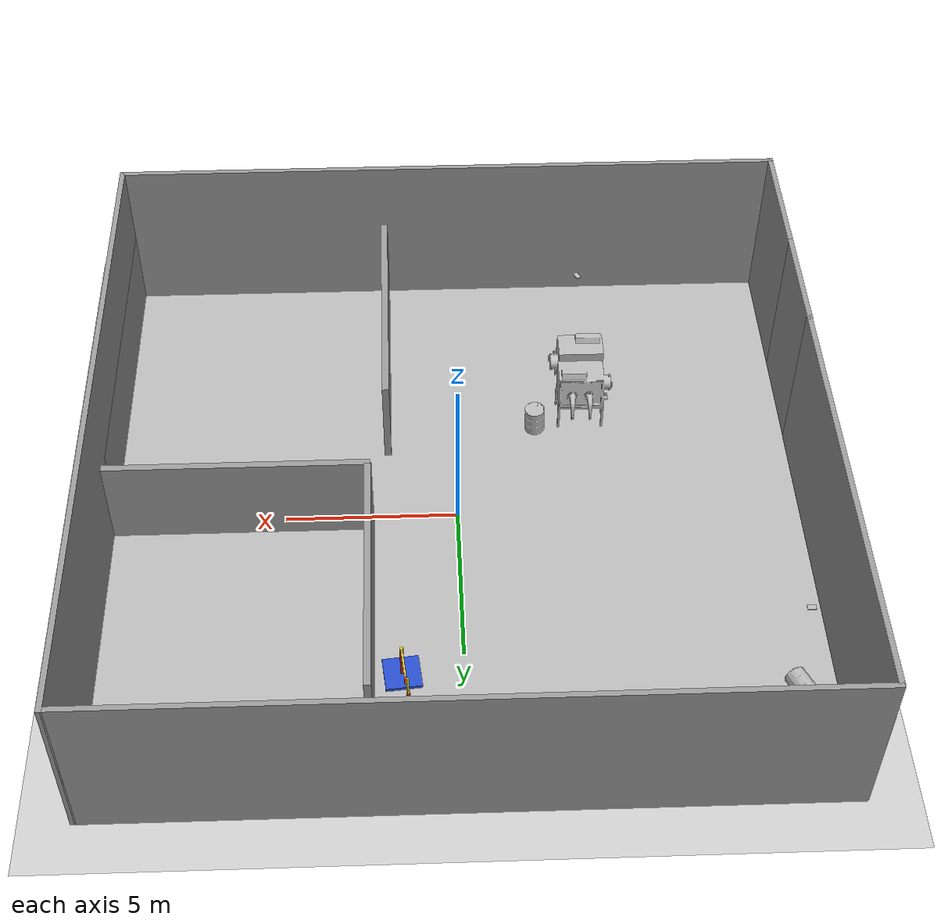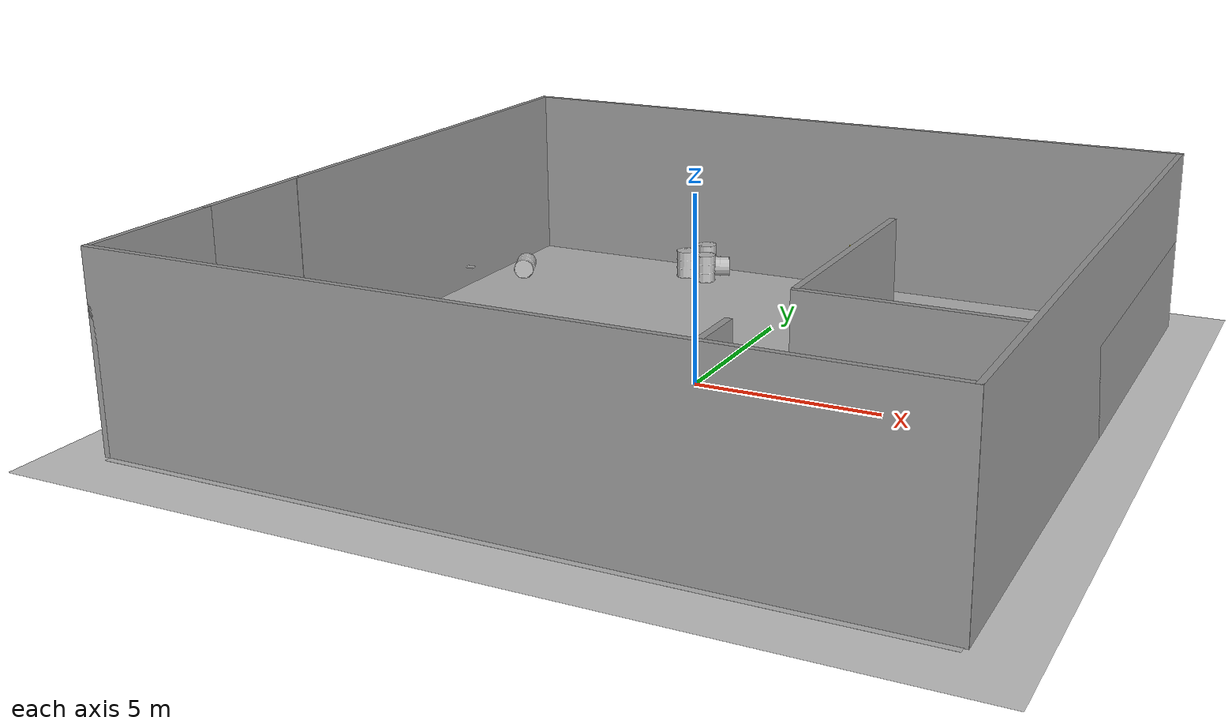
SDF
<sdf version="1.7">
 <world name="default">
  <scene><shadows>0</shadows><ambient>0.4 0.4 0.4 1</ambient><background>0.7 0.7 0.7 1</background></scene>
  <light name="sun" type="directional">
   <cast_shadows>0</cast_shadows>
   <pose>0 0 5 0 -0 0</pose>
   <diffuse>0.8 0.8 0.8 1</diffuse>
   <specular>0.1 0.1 0.1 1</specular>
   <attenuation>
    <range>1000</range>
    <constant>0.9</constant>
    <linear>0.01</linear>
    <quadratic>0.001</quadratic>
   </attenuation>
   <direction>-0.5 0.5 -1</direction>
   <spot><inner_angle>0</inner_angle><outer_angle>0</outer_angle><falloff>0</falloff></spot>
  </light>
  <physics name="default_physics" default="0" type="ode">
   <max_step_size>0.001</max_step_size>
   <real_time_factor>1</real_time_factor>
   <real_time_update_rate>1000</real_time_update_rate>
  </physics>
  <scene><ambient>0.4 0.4 0.4 1</ambient><background>0.7 0.7 0.7 1</background><shadows>1</shadows></scene>
  <spherical_coordinates>
   <surface_model>EARTH_WGS84</surface_model>
   <latitude_deg>0</latitude_deg>
   <longitude_deg>0</longitude_deg>
   <elevation>0</elevation>
   <heading_deg>0</heading_deg>
  </spherical_coordinates>
  <model name="ground_plane">
   <static>1</static>
   <link name="link">
    <collision name="collision">
     <geometry><plane><normal>0 0 1</normal><size>100 100</size></plane></geometry>
     <surface><friction><ode><mu>1</mu><mu2>1</mu2></ode></friction></surface>
    </collision>
    <visual name="visual">
     <cast_shadows>0</cast_shadows>
     <geometry><plane><normal>0 0 1</normal><size>100 100</size></plane></geometry>
     <material>
      <script><uri>file://media/materials/scripts/gazebo.material</uri><name>Gazebo/Grey</name></script>
     </material>
    </visual>
    <velocity_decay><linear>0</linear><angular>0</angular></velocity_decay>
   </link>
  </model>
  <gravity>0 0 -9.8</gravity>
  <magnetic_field>6e-06 2.3e-05 -4.2e-05</magnetic_field>
  <atmosphere type="adiabatic"/>
  <model name="newspaper_2">
   <link name="link_0">
    <visual name="visual">
     <geometry><box><size>0.35 0.25 0.02</size></box></geometry>
     <material>
      <script>
       <uri>model://newspaper_2/materials/scripts</uri>
       <uri>model://newspaper_2/materials/textures</uri>
       <name>newspaper_2</name>
      </script>
     </material>
    </visual>
    <collision name="collision"><geometry><box><size>0.35 0.25 0.02</size></box></geometry></collision>
   </link>
   <static>1</static>
   <pose>4.14262 -0.090324 0.77593 0 0 -0.934541</pose>
  </model>
  <model name="book_18_0">
   <link name="cover">
    <pose>0 -0.000108 0.015405 0 -0 0</pose>
    <visual name="visual">
     <geometry><box><size>0.245 0.16 0.03</size></box></geometry>
     <material>
      <script>
       <uri>model://book_18/materials/scripts</uri>
       <uri>model://book_18/materials/textures</uri>
       <name>book_18</name>
      </script>
     </material>
    </visual>
    <collision name="collision"><geometry><box><size>0.245 0.16 0.03</size></box></geometry></collision>
   </link>
   <link name="page">
    <pose>0 0.000608 0.015405 0 -0 0</pose>
    <visual name="visual">
     <geometry><box><size>0.24502 0.15862 0.028</size></box></geometry>
     <material>
      <lighting>1</lighting>
      <ambient>1 1 1 1</ambient>
      <diffuse>1 1 1 1</diffuse>
      <specular>0.01 0.01 0.01 1</specular>
      <emissive>0 0 0 1</emissive>
      <shader type="vertex"><normal_map>__default__</normal_map></shader>
     </material>
    </visual>
    <collision name="collision"><geometry><box><size>0.245 0.16 0.03</size></box></geometry></collision>
   </link>
   <static>1</static>
   <pose>-4.22936 -9.50954 0.764084 0 0 -1.01851</pose>
  </model>
  <model name="book_14_1">
   <link name="cover">
    <pose>0 -0.000108 0.015405 0 -0 0</pose>
    <visual name="visual">
     <geometry><box><size>0.245 0.16 0.03</size></box></geometry>
     <material>
      <script>
       <uri>model://book_14/materials/scripts</uri>
       <uri>model://book_14/materials/textures</uri>
       <name>book_14</name>
      </script>
     </material>
    </visual>
    <collision name="collision"><geometry><box><size>0.245 0.16 0.03</size></box></geometry></collision>
   </link>
   <link name="page">
    <pose>0 0.000608 0.015405 0 -0 0</pose>
    <visual name="visual">
     <geometry><box><size>0.24502 0.15862 0.028</size></box></geometry>
     <material>
      <lighting>1</lighting>
      <ambient>1 1 1 1</ambient>
      <diffuse>1 1 1 1</diffuse>
      <specular>0.01 0.01 0.01 1</specular>
      <emissive>0 0 0 1</emissive>
      <shader type="vertex"><normal_map>__default__</normal_map></shader>
     </material>
    </visual>
    <collision name="collision"><geometry><box><size>0.245 0.16 0.03</size></box></geometry></collision>
   </link>
   <static>1</static>
   <pose>6.75904 -0.177472 0.763218 0 -0 0</pose>
  </model>
  <model name="book_10_0">
   <link name="cover">
    <pose>0 -0.000108 0.015405 0 -0 0</pose>
    <visual name="visual">
     <geometry><box><size>0.245 0.16 0.03</size></box></geometry>
     <material>
      <script>
       <uri>model://book_10/materials/scripts</uri>
       <uri>model://book_10/materials/textures</uri>
       <name>book_10</name>
      </script>
     </material>
    </visual>
    <collision name="collision"><geometry><box><size>0.245 0.16 0.03</size></box></geometry></collision>
   </link>
   <link name="page">
    <pose>0 0.000608 0.015405 0 -0 0</pose>
    <visual name="visual">
     <geometry><box><size>0.24502 0.15862 0.028</size></box></geometry>
     <material>
      <lighting>1</lighting>
      <ambient>1 1 1 1</ambient>
      <diffuse>1 1 1 1</diffuse>
      <specular>0.01 0.01 0.01 1</specular>
      <emissive>0 0 0 1</emissive>
      <shader type="vertex"><normal_map>__default__</normal_map></shader>
     </material>
    </visual>
    <collision name="collision"><geometry><box><size>0.245 0.16 0.03</size></box></geometry></collision>
   </link>
   <static>1</static>
   <pose>-9.53772 4.32526 0.774201 0 -0 3.12799</pose>
  </model>
  <audio><device>default</device></audio>
  <model name="tall_wall_basic">
   <pose>-0.0251 -0.03688 0 0 -0 0</pose>
   <link name="Wall_10">
    <collision name="Wall_10_Collision">
     <geometry><box><size>4 0.15 5</size></box></geometry>
     <pose>0 0 2.5 0 -0 0</pose>
    </collision>
    <visual name="Wall_10_Visual">
     <pose>0 0 2.5 0 -0 0</pose>
     <geometry><box><size>4 0.15 5</size></box></geometry>
     <material>
      <script><uri>file://media/materials/scripts/gazebo.material</uri><name>Gazebo/Grey</name></script>
      <ambient>1 1 1 1</ambient>
     </material>
     <meta><layer>0</layer></meta>
    </visual>
    <pose>-10.0575 -7.985 0 0 -0 -1.5708</pose>
   </link>
   <link name="Wall_11">
    <collision name="Wall_11_Collision">
     <geometry><box><size>20.25 0.15 5</size></box></geometry>
     <pose>0 0 2.5 0 -0 0</pose>
    </collision>
    <visual name="Wall_11_Visual">
     <pose>0 0 2.5 0 -0 0</pose>
     <geometry><box><size>20.25 0.15 5</size></box></geometry>
     <material>
      <script><uri>file://media/materials/scripts/gazebo.material</uri><name>Gazebo/Grey</name></script>
      <ambient>1 1 1 1</ambient>
     </material>
     <meta><layer>0</layer></meta>
    </visual>
    <pose>-0.007528 -9.91 0 0 -0 0</pose>
   </link>
   <link name="Wall_13">
    <collision name="Wall_13_Collision">
     <geometry><box><size>19.9699 0.15 2.5</size></box></geometry>
     <pose>0 0 1.25 0 -0 0</pose>
    </collision>
    <visual name="Wall_13_Visual">
     <pose>0 0 1.25 0 -0 0</pose>
     <geometry><box><size>19.9699 0.15 2.5</size></box></geometry>
     <material>
      <script><uri>file://media/materials/scripts/gazebo.material</uri><name>Gazebo/Grey</name></script>
      <ambient>1 1 1 1</ambient>
     </material>
     <meta><layer>0</layer></meta>
    </visual>
    <pose>10.05 -0 0 0 -0 1.57004</pose>
   </link>
   <link name="Wall_14">
    <collision name="Wall_14_Collision">
     <geometry><box><size>19.9699 0.15 5</size></box></geometry>
     <pose>0 0 2.5 0 -0 0</pose>
    </collision>
    <visual name="Wall_14_Visual">
     <pose>0 0 2.5 0 -0 0</pose>
     <geometry><box><size>19.9699 0.15 5</size></box></geometry>
     <material>
      <script><uri>file://media/materials/scripts/gazebo.material</uri><name>Gazebo/Grey</name></script>
      <ambient>1 1 1 1</ambient>
     </material>
     <meta><layer>0</layer></meta>
    </visual>
    <pose>10.05 -0 0 0 -0 -1.57155</pose>
   </link>
   <link name="Wall_17">
    <collision name="Wall_17_Collision">
     <geometry><box><size>20.2348 0.15 5</size></box></geometry>
     <pose>0 0 2.5 0 -0 0</pose>
    </collision>
    <visual name="Wall_17_Visual">
     <pose>0 0 2.5 0 -0 0</pose>
     <geometry><box><size>20.2348 0.15 5</size></box></geometry>
     <material>
      <script><uri>file://media/materials/scripts/gazebo.material</uri><name>Gazebo/Grey</name></script>
      <ambient>1 1 1 1</ambient>
     </material>
     <meta><layer>0</layer></meta>
    </visual>
    <pose>0.014972 9.91 0 0 -0 3.14159</pose>
   </link>
   <link name="Wall_19">
    <collision name="Wall_19_Collision">
     <geometry><box><size>12.75 0.15 5</size></box></geometry>
     <pose>0 0 2.5 0 -0 0</pose>
    </collision>
    <visual name="Wall_19_Visual">
     <pose>0 0 2.5 0 -0 0</pose>
     <geometry><box><size>12.75 0.15 5</size></box></geometry>
     <material>
      <script><uri>file://media/materials/scripts/gazebo.material</uri><name>Gazebo/Grey</name></script>
      <ambient>1 1 1 1</ambient>
     </material>
     <meta><layer>0</layer></meta>
    </visual>
    <pose>-10.0475 3.587 0 0 -0 1.5708</pose>
   </link>
   <link name="Wall_6">
    <collision name="Wall_6_Collision">
     <geometry><box><size>3.5 0.15 5</size></box></geometry>
     <pose>0 0 2.5 0 -0 0</pose>
    </collision>
    <visual name="Wall_6_Visual">
     <pose>0 0 2.5 0 -0 0</pose>
     <geometry><box><size>3.5 0.15 5</size></box></geometry>
     <material>
      <script><uri>file://media/materials/scripts/gazebo.material</uri><name>Gazebo/Grey</name></script>
      <ambient>1 1 1 1</ambient>
     </material>
     <meta><layer>0</layer></meta>
    </visual>
    <pose>-10.0575 -4.385 0 0 -0 -1.5708</pose>
   </link>
   <static>1</static>
  </model>
  <model name="glovebox_clone_clone">
   <static>0</static>
   <link name="link">
    <visual name="visual">
     <geometry><mesh><uri>model://glovebox/meshes/glovebox.obj</uri></mesh></geometry>
    </visual>
    <collision name="collision">
     <geometry><mesh><uri>model://glovebox/meshes/glovebox.obj</uri></mesh></geometry>
    </collision>
    <inertial>
     <inertia><ixx>1</ixx><ixy>0</ixy><ixz>0</ixz><iyy>1</iyy><iyz>0</iyz><izz>1</izz></inertia>
     <mass>1</mass>
    </inertial>
   </link>
   <pose>-3.92659 -5.23927 0.000283 1.57189 -3.8e-05 -5.7e-05</pose>
  </model>
  <model name="glovebox_clone_0">
   <static>0</static>
   <link name="link">
    <visual name="visual">
     <geometry><mesh><uri>model://glovebox/meshes/glovebox.obj</uri></mesh></geometry>
    </visual>
    <collision name="collision">
     <geometry><mesh><uri>model://glovebox/meshes/glovebox.obj</uri></mesh></geometry>
    </collision>
    <inertial>
     <inertia><ixx>1</ixx><ixy>0</ixy><ixz>0</ixz><iyy>1</iyy><iyz>0</iyz><izz>1</izz></inertia>
     <mass>1</mass>
    </inertial>
   </link>
   <pose>-3.85422 -3.96262 0.000283 1.57189 -3.8e-05 3.13358</pose>
  </model>
  <model name="toxic_barrel">
   <static>0</static>
   <link name="link">
    <visual name="visual">
     <geometry><mesh><uri>model://toxic_barrel/meshes/barrel_red.obj</uri></mesh></geometry>
    </visual>
    <collision name="collision">
     <geometry><mesh><uri>model://toxic_barrel/meshes/barrel_red.obj</uri></mesh></geometry>
    </collision>
    <inertial>
     <inertia><ixx>1</ixx><ixy>0</ixy><ixz>0</ixz><iyy>1</iyy><iyz>0</iyz><izz>1</izz></inertia>
     <mass>1</mass>
    </inertial>
   </link>
   <pose>-3.6255 8.40382 0.43086 1.58304 0.005373 0.6035</pose>
  </model>
  <model name="toxic_barrel_clone">
   <static>0</static>
   <link name="link">
    <visual name="visual">
     <geometry><mesh><uri>model://toxic_barrel/meshes/barrel_red.obj</uri></mesh></geometry>
    </visual>
    <collision name="collision">
     <geometry><mesh><uri>model://toxic_barrel/meshes/barrel_red.obj</uri></mesh></geometry>
    </collision>
    <inertial>
     <inertia><ixx>1</ixx><ixy>0</ixy><ixz>0</ixz><iyy>1</iyy><iyz>0</iyz><izz>1</izz></inertia>
     <mass>1</mass>
    </inertial>
   </link>
   <pose>-4.09113 9.4926 0.428476 1.57435 0.003646 0.9305</pose>
  </model>
  <model name="toxic_barrel_clone_clone">
   <static>0</static>
   <link name="link">
    <visual name="visual">
     <geometry><mesh><uri>model://toxic_barrel/meshes/barrel_red.obj</uri></mesh></geometry>
    </visual>
    <collision name="collision">
     <geometry><mesh><uri>model://toxic_barrel/meshes/barrel_red.obj</uri></mesh></geometry>
    </collision>
    <inertial>
     <inertia><ixx>1</ixx><ixy>0</ixy><ixz>0</ixz><iyy>1</iyy><iyz>0</iyz><izz>1</izz></inertia>
     <mass>1</mass>
    </inertial>
   </link>
   <pose>-4.63916 9.26515 0.306207 -1e-06 0.196197 0.457584</pose>
  </model>
  <model name="toxic_barrel_clone_clone_0">
   <static>0</static>
   <link name="link">
    <visual name="visual">
     <geometry><mesh><uri>model://toxic_barrel/meshes/barrel_red.obj</uri></mesh></geometry>
    </visual>
    <collision name="collision">
     <geometry><mesh><uri>model://toxic_barrel/meshes/barrel_red.obj</uri></mesh></geometry>
    </collision>
    <inertial>
     <inertia><ixx>1</ixx><ixy>0</ixy><ixz>0</ixz><iyy>1</iyy><iyz>0</iyz><izz>1</izz></inertia>
     <mass>1</mass>
    </inertial>
   </link>
   <pose>-4.37079 8.59494 0.429555 1.5638 0.005478 -0.976021</pose>
  </model>
  <model name="toxic_barrel_clone_clone_0_clone">
   <static>0</static>
   <link name="link">
    <visual name="visual">
     <geometry><mesh><uri>model://toxic_barrel/meshes/barrel_red.obj</uri></mesh></geometry>
    </visual>
    <collision name="collision">
     <geometry><mesh><uri>model://toxic_barrel/meshes/barrel_red.obj</uri></mesh></geometry>
    </collision>
    <inertial>
     <inertia><ixx>1</ixx><ixy>0</ixy><ixz>0</ixz><iyy>1</iyy><iyz>0</iyz><izz>1</izz></inertia>
     <mass>1</mass>
    </inertial>
   </link>
   <pose>-3.56759 9.07979 0.306232 3.14159 -0.588573 1.97766</pose>
  </model>
  <model name="toxic_barrel_clone_clone_0_clone_0">
   <static>0</static>
   <link name="link">
    <visual name="visual">
     <geometry><mesh><uri>model://toxic_barrel/meshes/barrel_red.obj</uri></mesh></geometry>
    </visual>
    <collision name="collision">
     <geometry><mesh><uri>model://toxic_barrel/meshes/barrel_red.obj</uri></mesh></geometry>
    </collision>
    <inertial>
     <inertia><ixx>1</ixx><ixy>0</ixy><ixz>0</ixz><iyy>1</iyy><iyz>0</iyz><izz>1</izz></inertia>
     <mass>1</mass>
    </inertial>
   </link>
   <pose>-2.45725 -3.42441 0.434224 1.58327 0.022163 0.904366</pose>
  </model>
  <model name="toxic_barrel_clone_clone_clone">
   <static>0</static>
   <link name="link">
    <visual name="visual">
     <geometry><mesh><uri>model://toxic_barrel/meshes/barrel_red.obj</uri></mesh></geometry>
    </visual>
    <collision name="collision">
     <geometry><mesh><uri>model://toxic_barrel/meshes/barrel_red.obj</uri></mesh></geometry>
    </collision>
    <inertial>
     <inertia><ixx>1</ixx><ixy>0</ixy><ixz>0</ixz><iyy>1</iyy><iyz>0</iyz><izz>1</izz></inertia>
     <mass>1</mass>
    </inertial>
   </link>
   <pose>-8.98005 6.56129 0.306213 3.14157 -0.589073 -2.71388</pose>
  </model>
  <model name="grey_wall">
   <static>1</static>
   <link name="link">
    <pose>0 0 1.4 0 -0 0</pose>
    <collision name="collision"><geometry><box><size>7.5 0.2 2.8</size></box></geometry></collision>
    <visual name="visual">
     <cast_shadows>0</cast_shadows>
     <geometry><box><size>7.5 0.2 2.8</size></box></geometry>
     <material>
      <script>
       <uri>model://grey_wall/materials/scripts</uri>
       <uri>model://grey_wall/materials/textures</uri>
       <name>vrc/grey_wall</name>
      </script>
     </material>
    </visual>
   </link>
   <pose>6.20319 0.349624 0 0 -0 0</pose>
  </model>
  <model name="grey_wall_clone">
   <static>1</static>
   <link name="link">
    <pose>0 0 1.4 0 -0 0</pose>
    <collision name="collision"><geometry><box><size>7.5 0.2 2.8</size></box></geometry></collision>
    <visual name="visual">
     <cast_shadows>0</cast_shadows>
     <geometry><box><size>7.5 0.2 2.8</size></box></geometry>
     <material>
      <script>
       <uri>model://grey_wall/materials/scripts</uri>
       <uri>model://grey_wall/materials/textures</uri>
       <name>vrc/grey_wall</name>
      </script>
     </material>
    </visual>
   </link>
   <pose>2.52817 4.14283 0 0 -0 1.57058</pose>
  </model>
  <model name="simple_arm">
   <link name="arm_base">
    <inertial>
     <pose>0 0 0.00099 0 -0 0</pose>
     <inertia><ixx>1.11</ixx><ixy>0</ixy><ixz>0</ixz><iyy>100.11</iyy><iyz>0</iyz><izz>1.01</izz></inertia>
     <mass>101</mass>
    </inertial>
    <collision name="arm_base_geom">
     <pose>0 0 0.05 0 -0 0</pose>
     <geometry><box><size>1 1 0.1</size></box></geometry>
    </collision>
    <visual name="arm_base_geom_visual">
     <pose>0 0 0.05 0 -0 0</pose>
     <geometry><box><size>1 1 0.1</size></box></geometry>
     <material>
      <script><uri>file://media/materials/scripts/gazebo.material</uri><name>Gazebo/Blue</name></script>
     </material>
    </visual>
    <collision name="arm_base_geom_arm_trunk">
     <pose>0 0 0.6 0 -0 0</pose>
     <geometry><cylinder><radius>0.05</radius><length>1</length></cylinder></geometry>
    </collision>
    <visual name="arm_base_geom_arm_trunk_visual">
     <pose>0 0 0.6 0 -0 0</pose>
     <geometry><cylinder><radius>0.05</radius><length>1</length></cylinder></geometry>
     <material>
      <script><uri>file://media/materials/scripts/gazebo.material</uri><name>Gazebo/Red</name></script>
     </material>
    </visual>
   </link>
   <link name="arm_shoulder_pan">
    <pose>0 0 1.1 0 -0 0</pose>
    <inertial>
     <pose>0.045455 0 0 0 -0 0</pose>
     <inertia><ixx>0.011</ixx><ixy>0</ixy><ixz>0</ixz><iyy>0.0225</iyy><iyz>0</iyz><izz>0.0135</izz></inertia>
     <mass>1.1</mass>
    </inertial>
    <collision name="arm_shoulder_pan_geom">
     <pose>0 0 0.05 0 -0 0</pose>
     <geometry><cylinder><radius>0.05</radius><length>0.1</length></cylinder></geometry>
    </collision>
    <visual name="arm_shoulder_pan_geom_visual">
     <pose>0 0 0.05 0 -0 0</pose>
     <geometry><cylinder><radius>0.05</radius><length>0.1</length></cylinder></geometry>
     <material>
      <script><uri>file://media/materials/scripts/gazebo.material</uri><name>Gazebo/Yellow</name></script>
     </material>
    </visual>
    <collision name="arm_shoulder_pan_geom_arm_shoulder">
     <pose>0.55 0 0.05 0 -0 0</pose>
     <geometry><box><size>1 0.05 0.1</size></box></geometry>
    </collision>
    <visual name="arm_shoulder_pan_geom_arm_shoulder_visual">
     <pose>0.55 0 0.05 0 -0 0</pose>
     <geometry><box><size>1 0.05 0.1</size></box></geometry>
     <material>
      <script><uri>file://media/materials/scripts/gazebo.material</uri><name>Gazebo/Yellow</name></script>
     </material>
    </visual>
   </link>
   <link name="arm_elbow_pan">
    <pose>1.05 0 1.1 0 -0 0</pose>
    <inertial>
     <pose>0.0875 0 0.083333 0 -0 0</pose>
     <inertia>
      <ixx>0.031</ixx>
      <ixy>0</ixy>
      <ixz>0.005</ixz>
      <iyy>0.07275</iyy>
      <iyz>0</iyz>
      <izz>0.04475</izz>
     </inertia>
     <mass>1.2</mass>
    </inertial>
    <collision name="arm_elbow_pan_geom">
     <pose>0 0 0.1 0 -0 0</pose>
     <geometry><cylinder><radius>0.05</radius><length>0.2</length></cylinder></geometry>
    </collision>
    <visual name="arm_elbow_pan_geom_visual">
     <pose>0 0 0.1 0 -0 0</pose>
     <geometry><cylinder><radius>0.05</radius><length>0.2</length></cylinder></geometry>
     <material>
      <script><uri>file://media/materials/scripts/gazebo.material</uri><name>Gazebo/Red</name></script>
     </material>
    </visual>
    <collision name="arm_elbow_pan_geom_arm_elbow">
     <pose>0.3 0 0.15 0 -0 0</pose>
     <geometry><box><size>0.5 0.03 0.1</size></box></geometry>
    </collision>
    <visual name="arm_elbow_pan_geom_arm_elbow_visual">
     <pose>0.3 0 0.15 0 -0 0</pose>
     <geometry><box><size>0.5 0.03 0.1</size></box></geometry>
     <material>
      <script><uri>file://media/materials/scripts/gazebo.material</uri><name>Gazebo/Yellow</name></script>
     </material>
    </visual>
    <collision name="arm_elbow_pan_geom_arm_wrist">
     <pose>0.55 0 0.15 0 -0 0</pose>
     <geometry><cylinder><radius>0.05</radius><length>0.3</length></cylinder></geometry>
    </collision>
    <visual name="arm_elbow_pan_geom_arm_wrist_visual">
     <pose>0.55 0 0.15 0 -0 0</pose>
     <geometry><cylinder><radius>0.05</radius><length>0.3</length></cylinder></geometry>
     <material>
      <script><uri>file://media/materials/scripts/gazebo.material</uri><name>Gazebo/Red</name></script>
     </material>
    </visual>
   </link>
   <link name="arm_wrist_lift">
    <pose>1.6 0 1.05 0 -0 0</pose>
    <inertial>
     <inertia><ixx>0.01</ixx><ixy>0</ixy><ixz>0</ixz><iyy>0.01</iyy><iyz>0</iyz><izz>0.001</izz></inertia>
     <mass>0.1</mass>
    </inertial>
    <collision name="arm_wrist_lift_geom">
     <pose>0 0 0.5 0 -0 0</pose>
     <geometry><cylinder><radius>0.03</radius><length>1</length></cylinder></geometry>
    </collision>
    <visual name="arm_wrist_lift_geom_visual">
     <pose>0 0 0.5 0 -0 0</pose>
     <geometry><cylinder><radius>0.03</radius><length>1</length></cylinder></geometry>
     <material>
      <script><uri>file://media/materials/scripts/gazebo.material</uri><name>Gazebo/Yellow</name></script>
     </material>
    </visual>
   </link>
   <link name="arm_wrist_roll">
    <pose>1.6 0 1 0 -0 0</pose>
    <inertial>
     <inertia><ixx>0.01</ixx><ixy>0</ixy><ixz>0</ixz><iyy>0.01</iyy><iyz>0</iyz><izz>0.001</izz></inertia>
     <mass>0.1</mass>
    </inertial>
    <collision name="arm_wrist_roll_geom">
     <pose>0 0 0.025 0 -0 0</pose>
     <geometry><cylinder><radius>0.05</radius><length>0.05</length></cylinder></geometry>
    </collision>
    <visual name="arm_wrist_roll_geom_visual">
     <pose>0 0 0.025 0 -0 0</pose>
     <geometry><cylinder><radius>0.05</radius><length>0.05</length></cylinder></geometry>
     <material>
      <script><uri>file://media/materials/scripts/gazebo.material</uri><name>Gazebo/Red</name></script>
     </material>
    </visual>
   </link>
   <joint name="arm_shoulder_pan_joint" type="revolute">
    <parent>arm_base</parent>
    <child>arm_shoulder_pan</child>
    <axis>
     <dynamics>
      <damping>1</damping>
      <friction>0</friction>
      <spring_reference>0</spring_reference>
      <spring_stiffness>0</spring_stiffness>
     </dynamics>
     <xyz expressed_in="__model__">0 0 1</xyz>
     <limit><lower>-1e+16</lower><upper>1e+16</upper></limit>
    </axis>
   </joint>
   <joint name="arm_elbow_pan_joint" type="revolute">
    <parent>arm_shoulder_pan</parent>
    <child>arm_elbow_pan</child>
    <axis>
     <dynamics>
      <damping>1</damping>
      <friction>0</friction>
      <spring_reference>0</spring_reference>
      <spring_stiffness>0</spring_stiffness>
     </dynamics>
     <xyz expressed_in="__model__">0 0 1</xyz>
     <limit><lower>-1e+16</lower><upper>1e+16</upper></limit>
    </axis>
   </joint>
   <joint name="arm_wrist_lift_joint" type="prismatic">
    <parent>arm_elbow_pan</parent>
    <child>arm_wrist_lift</child>
    <axis>
     <dynamics>
      <damping>1</damping>
      <friction>0</friction>
      <spring_reference>0</spring_reference>
      <spring_stiffness>0</spring_stiffness>
     </dynamics>
     <limit><lower>-0.8</lower><upper>0.1</upper></limit>
     <xyz expressed_in="__model__">0 0 1</xyz>
    </axis>
   </joint>
   <joint name="arm_wrist_roll_joint" type="revolute">
    <parent>arm_wrist_lift</parent>
    <child>arm_wrist_roll</child>
    <axis>
     <dynamics>
      <damping>1</damping>
      <friction>0</friction>
      <spring_reference>0</spring_reference>
      <spring_stiffness>0</spring_stiffness>
     </dynamics>
     <limit><lower>-2.99999</lower><upper>2.99999</upper></limit>
     <xyz expressed_in="__model__">0 0 1</xyz>
    </axis>
   </joint>
   <pose>1.68562 5.62318 0.010446 -0.00011 1e-06 1.67576</pose>
  </model>
  <model name="grey_wall_clone_clone">
   <static>1</static>
   <link name="link">
    <pose>0 0 1.4 0 -0 0</pose>
    <collision name="collision"><geometry><box><size>7.5 0.2 2.8</size></box></geometry></collision>
    <visual name="visual">
     <cast_shadows>0</cast_shadows>
     <geometry><box><size>7.5 0.2 2.8</size></box></geometry>
     <material>
      <script>
       <uri>model://grey_wall/materials/scripts</uri>
       <uri>model://grey_wall/materials/textures</uri>
       <name>vrc/grey_wall</name>
      </script>
     </material>
    </visual>
   </link>
   <pose>2.01421 -6.20078 0 0 -0 1.57058</pose>
  </model>
  <model name="Floor_room">
   <link name="main">
    <pose>0 0 0.01 0 -0 0</pose>
    <collision name="main_Collision"><geometry><box><size>20 20 0.001</size></box></geometry></collision>
    <visual name="main_Visual">
     <geometry><box><size>20 20 0.001</size></box></geometry>
     <material>
      <script>
       <uri>model://Floor_room/materials/scripts</uri>
       <uri>model://Floor_room/materials/textures</uri>
       <name>floor_room</name>
      </script>
     </material>
    </visual>
   </link>
   <static>1</static>
   <pose>-0.002947 -0.189727 0 0 -0 0</pose>
  </model>
 </world>
</sdf>
